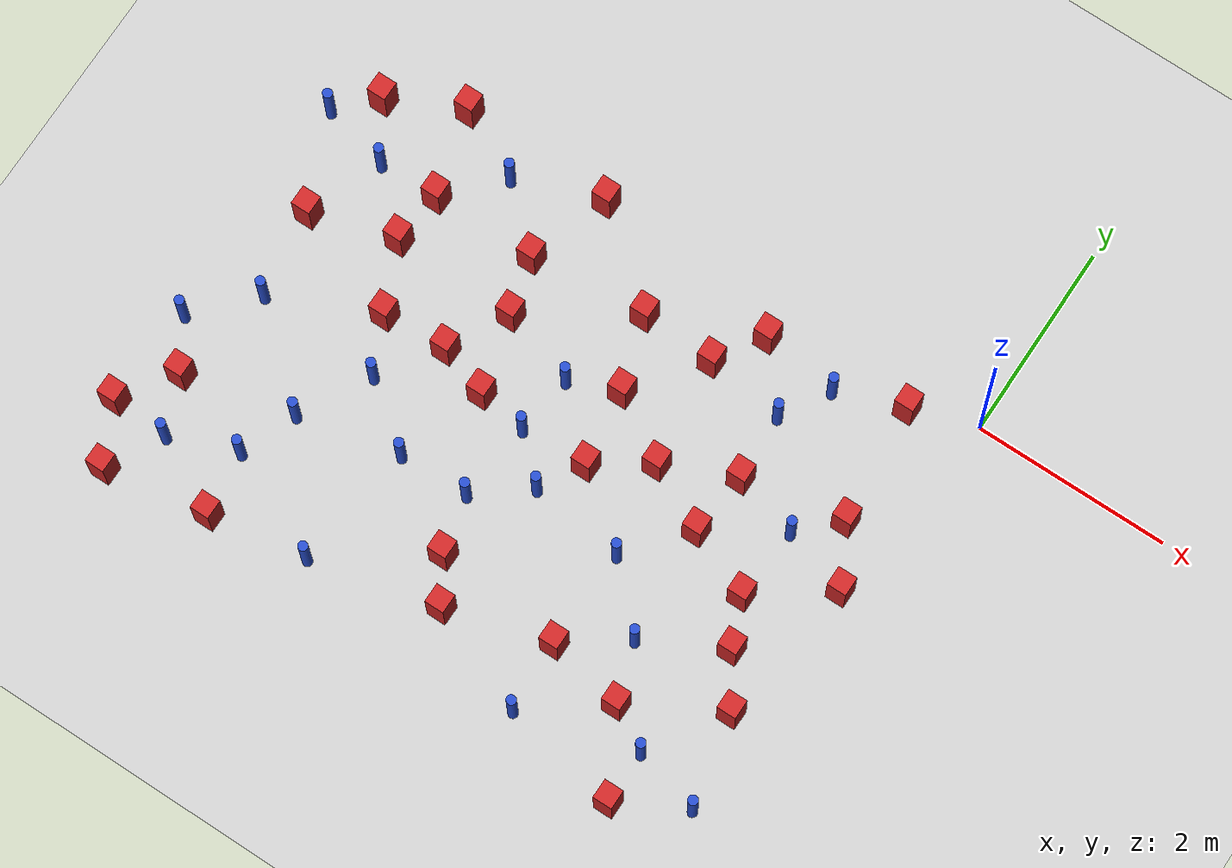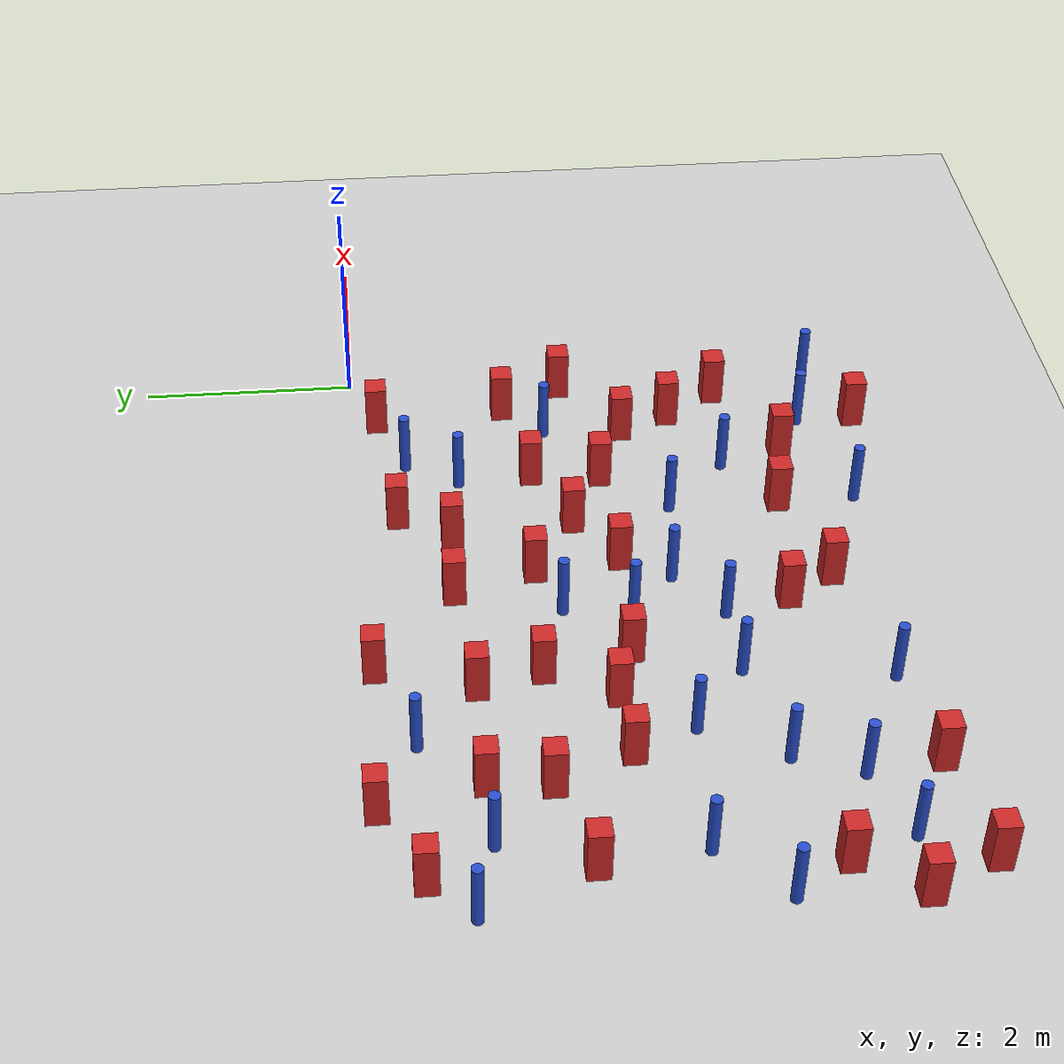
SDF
<sdf version="1.6">
 <world name="default">
  <model name="ground_plane">
   <static>1</static>
   <link name="link">
    <collision name="collision">
     <geometry><plane><normal>0 0 1</normal><size>100 100</size></plane></geometry>
     <surface><friction><ode><mu>100</mu><mu2>50</mu2></ode></friction></surface>
    </collision>
    <visual name="visual">
     <cast_shadows>0</cast_shadows>
     <geometry><plane><normal>0 0 1</normal><size>100 100</size></plane></geometry>
     <material>
      <ambient>1.0 1.0 1.0 1.0</ambient>
      <diffuse>0.8 0.8 0.8 1.0</diffuse>
      <specular>0.01 0.01 0.01 1.000000</specular>
     </material>
    </visual>
   </link>
  </model>
  <model name="square_post_obstacle1">
   <static>true</static>
   <pose>-1.64343410092 -2.30711598032 1.91545236811e-07 -7.35059704564e-06 1.12565212e-07 2.39332434364e-05</pose>
   <link name="link">
    <pose>0 0 0.25 0 -0 0</pose>
    <inertial>
     <mass>100</mass>
     <inertia>
      <ixx>0.166667</ixx>
      <ixy>0</ixy>
      <ixz>0</ixz>
      <iyy>0.166667</iyy>
      <iyz>0</iyz>
      <izz>0.166667</izz>
     </inertia>
    </inertial>
    <collision name="collision"><geometry><box><size>.2 .2 .5</size></box></geometry></collision>
    <visual name="visual">
     <geometry><box><size>.2 .2 .5</size></box></geometry>
     <material>
      <script><name>Gazebo/Red</name><uri>file://media/materials/scripts/gazebo.material</uri></script>
     </material>
    </visual>
   </link>
  </model>
  <model name="square_post_obstacle5">
   <static>true</static>
   <pose>-2.94836752955 -1.5777060494 1.91545236811e-07 -7.35059704564e-06 1.12565212e-07 2.39332434364e-05</pose>
   <link name="link">
    <pose>0 0 0.25 0 -0 0</pose>
    <inertial>
     <mass>100</mass>
     <inertia>
      <ixx>0.166667</ixx>
      <ixy>0</ixy>
      <ixz>0</ixz>
      <iyy>0.166667</iyy>
      <iyz>0</iyz>
      <izz>0.166667</izz>
     </inertia>
    </inertial>
    <collision name="collision"><geometry><box><size>.2 .2 .5</size></box></geometry></collision>
    <visual name="visual">
     <geometry><box><size>.2 .2 .5</size></box></geometry>
     <material>
      <script><name>Gazebo/Red</name><uri>file://media/materials/scripts/gazebo.material</uri></script>
     </material>
    </visual>
   </link>
  </model>
  <model name="pole_obstacle4">
   <static>true</static>
   <pose>-5.57209997911 -4.01686630805 7.38925637345e-09 -8.47170692796e-08 1.24976764791e-08 -1.74513093031e-07</pose>
   <link name="link">
    <pose>0 0 0.3 0 -0 0</pose>
    <inertial>
     <mass>1</mass>
     <inertia><ixx>0.145833</ixx><ixy>0</ixy><ixz>0</ixz><iyy>0.145833</iyy><iyz>0</iyz><izz>0.125</izz></inertia>
    </inertial>
    <collision name="collision">
     <geometry><cylinder><radius>0.05</radius><length>.6</length></cylinder></geometry>
    </collision>
    <visual name="visual">
     <geometry><cylinder><radius>0.05</radius><length>.6</length></cylinder></geometry>
     <material>
      <script><name>Gazebo/Blue</name><uri>file://media/materials/scripts/gazebo.material</uri></script>
     </material>
    </visual>
   </link>
  </model>
  <model name="square_post_obstacle12">
   <static>true</static>
   <pose>-6.83879509519 -4.23046960165 1.91545236811e-07 -7.35059704564e-06 1.12565212e-07 2.39332434364e-05</pose>
   <link name="link">
    <pose>0 0 0.25 0 -0 0</pose>
    <inertial>
     <mass>100</mass>
     <inertia>
      <ixx>0.166667</ixx>
      <ixy>0</ixy>
      <ixz>0</ixz>
      <iyy>0.166667</iyy>
      <iyz>0</iyz>
      <izz>0.166667</izz>
     </inertia>
    </inertial>
    <collision name="collision"><geometry><box><size>.2 .2 .5</size></box></geometry></collision>
    <visual name="visual">
     <geometry><box><size>.2 .2 .5</size></box></geometry>
     <material>
      <script><name>Gazebo/Red</name><uri>file://media/materials/scripts/gazebo.material</uri></script>
     </material>
    </visual>
   </link>
  </model>
  <model name="pole_obstacle9">
   <static>true</static>
   <pose>-6.08255972995 -0.967734815302 7.38925637345e-09 -8.47170692799e-08 1.24976765054e-08 -1.74513093018e-07</pose>
   <link name="link">
    <pose>0 0 0.3 0 -0 0</pose>
    <inertial>
     <mass>1</mass>
     <inertia><ixx>0.145833</ixx><ixy>0</ixy><ixz>0</ixz><iyy>0.145833</iyy><iyz>0</iyz><izz>0.125</izz></inertia>
    </inertial>
    <collision name="collision">
     <geometry><cylinder><radius>0.05</radius><length>.6</length></cylinder></geometry>
    </collision>
    <visual name="visual">
     <geometry><cylinder><radius>0.05</radius><length>.6</length></cylinder></geometry>
     <material>
      <script><name>Gazebo/Blue</name><uri>file://media/materials/scripts/gazebo.material</uri></script>
     </material>
    </visual>
   </link>
  </model>
  <model name="square_post_obstacle22">
   <static>true</static>
   <pose>-4.10464429854 -0.103522538844 1.91545236811e-07 -7.35059704564e-06 1.12565212e-07 2.39332434364e-05</pose>
   <link name="link">
    <pose>0 0 0.25 0 -0 0</pose>
    <inertial>
     <mass>100</mass>
     <inertia>
      <ixx>0.166667</ixx>
      <ixy>0</ixy>
      <ixz>0</ixz>
      <iyy>0.166667</iyy>
      <iyz>0</iyz>
      <izz>0.166667</izz>
     </inertia>
    </inertial>
    <collision name="collision"><geometry><box><size>.2 .2 .5</size></box></geometry></collision>
    <visual name="visual">
     <geometry><box><size>.2 .2 .5</size></box></geometry>
     <material>
      <script><name>Gazebo/Red</name><uri>file://media/materials/scripts/gazebo.material</uri></script>
     </material>
    </visual>
   </link>
  </model>
  <model name="square_post_obstacle25">
   <static>true</static>
   <pose>-2.11228978998 -0.387941742074 1.91545236811e-07 -7.35059704564e-06 1.12565212e-07 2.39332434364e-05</pose>
   <link name="link">
    <pose>0 0 0.25 0 -0 0</pose>
    <inertial>
     <mass>100</mass>
     <inertia>
      <ixx>0.166667</ixx>
      <ixy>0</ixy>
      <ixz>0</ixz>
      <iyy>0.166667</iyy>
      <iyz>0</iyz>
      <izz>0.166667</izz>
     </inertia>
    </inertial>
    <collision name="collision"><geometry><box><size>.2 .2 .5</size></box></geometry></collision>
    <visual name="visual">
     <geometry><box><size>.2 .2 .5</size></box></geometry>
     <material>
      <script><name>Gazebo/Red</name><uri>file://media/materials/scripts/gazebo.material</uri></script>
     </material>
    </visual>
   </link>
  </model>
  <model name="pole_obstacle26">
   <static>true</static>
   <pose>-4.98134884612 -0.418722331884 7.38925637345e-09 -8.47170692798e-08 1.24976765003e-08 -1.7451309302e-07</pose>
   <link name="link">
    <pose>0 0 0.3 0 -0 0</pose>
    <inertial>
     <mass>1</mass>
     <inertia><ixx>0.145833</ixx><ixy>0</ixy><ixz>0</ixz><iyy>0.145833</iyy><iyz>0</iyz><izz>0.125</izz></inertia>
    </inertial>
    <collision name="collision">
     <geometry><cylinder><radius>0.05</radius><length>.6</length></cylinder></geometry>
    </collision>
    <visual name="visual">
     <geometry><cylinder><radius>0.05</radius><length>.6</length></cylinder></geometry>
     <material>
      <script><name>Gazebo/Blue</name><uri>file://media/materials/scripts/gazebo.material</uri></script>
     </material>
    </visual>
   </link>
  </model>
  <model name="square_post_obstacle32">
   <static>true</static>
   <pose>-5.68270100299 -0.0684934742213 1.91545236811e-07 -7.35059704564e-06 1.12565212e-07 2.39332434364e-05</pose>
   <link name="link">
    <pose>0 0 0.25 0 -0 0</pose>
    <inertial>
     <mass>100</mass>
     <inertia>
      <ixx>0.166667</ixx>
      <ixy>0</ixy>
      <ixz>0</ixz>
      <iyy>0.166667</iyy>
      <iyz>0</iyz>
      <izz>0.166667</izz>
     </inertia>
    </inertial>
    <collision name="collision"><geometry><box><size>.2 .2 .5</size></box></geometry></collision>
    <visual name="visual">
     <geometry><box><size>.2 .2 .5</size></box></geometry>
     <material>
      <script><name>Gazebo/Red</name><uri>file://media/materials/scripts/gazebo.material</uri></script>
     </material>
    </visual>
   </link>
  </model>
  <model name="pole_obstacle38">
   <static>true</static>
   <pose>-6.24662356583 -4.27376655272 7.38925637345e-09 -8.47170692796e-08 1.24976764786e-08 -1.74513093032e-07</pose>
   <link name="link">
    <pose>0 0 0.3 0 -0 0</pose>
    <inertial>
     <mass>1</mass>
     <inertia><ixx>0.145833</ixx><ixy>0</ixy><ixz>0</ixz><iyy>0.145833</iyy><iyz>0</iyz><izz>0.125</izz></inertia>
    </inertial>
    <collision name="collision">
     <geometry><cylinder><radius>0.05</radius><length>.6</length></cylinder></geometry>
    </collision>
    <visual name="visual">
     <geometry><cylinder><radius>0.05</radius><length>.6</length></cylinder></geometry>
     <material>
      <script><name>Gazebo/Blue</name><uri>file://media/materials/scripts/gazebo.material</uri></script>
     </material>
    </visual>
   </link>
  </model>
  <model name="pole_obstacle40">
   <static>true</static>
   <pose>-2.12644207171 -2.90971165932 7.38925637345e-09 -8.47170692798e-08 1.24976764939e-08 -1.74513093025e-07</pose>
   <link name="link">
    <pose>0 0 0.3 0 -0 0</pose>
    <inertial>
     <mass>1</mass>
     <inertia><ixx>0.145833</ixx><ixy>0</ixy><ixz>0</ixz><iyy>0.145833</iyy><iyz>0</iyz><izz>0.125</izz></inertia>
    </inertial>
    <collision name="collision">
     <geometry><cylinder><radius>0.05</radius><length>.6</length></cylinder></geometry>
    </collision>
    <visual name="visual">
     <geometry><cylinder><radius>0.05</radius><length>.6</length></cylinder></geometry>
     <material>
      <script><name>Gazebo/Blue</name><uri>file://media/materials/scripts/gazebo.material</uri></script>
     </material>
    </visual>
   </link>
  </model>
  <model name="pole_obstacle45">
   <static>true</static>
   <pose>-1.54442410574 -3.48772031681 7.38925637345e-09 -8.47170692799e-08 1.24976765053e-08 -1.74513093017e-07</pose>
   <link name="link">
    <pose>0 0 0.3 0 -0 0</pose>
    <inertial>
     <mass>1</mass>
     <inertia><ixx>0.145833</ixx><ixy>0</ixy><ixz>0</ixz><iyy>0.145833</iyy><iyz>0</iyz><izz>0.125</izz></inertia>
    </inertial>
    <collision name="collision">
     <geometry><cylinder><radius>0.05</radius><length>.6</length></cylinder></geometry>
    </collision>
    <visual name="visual">
     <geometry><cylinder><radius>0.05</radius><length>.6</length></cylinder></geometry>
     <material>
      <script><name>Gazebo/Blue</name><uri>file://media/materials/scripts/gazebo.material</uri></script>
     </material>
    </visual>
   </link>
  </model>
  <model name="square_post_obstacle42">
   <static>true</static>
   <pose>-4.55187009387 -2.13424766193 1.91545236811e-07 -7.35059704564e-06 1.12565212e-07 2.39332434364e-05</pose>
   <link name="link">
    <pose>0 0 0.25 0 -0 0</pose>
    <inertial>
     <mass>100</mass>
     <inertia>
      <ixx>0.166667</ixx>
      <ixy>0</ixy>
      <ixz>0</ixz>
      <iyy>0.166667</iyy>
      <iyz>0</iyz>
      <izz>0.166667</izz>
     </inertia>
    </inertial>
    <collision name="collision"><geometry><box><size>.2 .2 .5</size></box></geometry></collision>
    <visual name="visual">
     <geometry><box><size>.2 .2 .5</size></box></geometry>
     <material>
      <script><name>Gazebo/Red</name><uri>file://media/materials/scripts/gazebo.material</uri></script>
     </material>
    </visual>
   </link>
  </model>
  <model name="square_post_obstacle43">
   <static>true</static>
   <pose>-4.03150252659 -2.30666054844 1.91545236811e-07 -7.35059704564e-06 1.12565212e-07 2.39332434364e-05</pose>
   <link name="link">
    <pose>0 0 0.25 0 -0 0</pose>
    <inertial>
     <mass>100</mass>
     <inertia>
      <ixx>0.166667</ixx>
      <ixy>0</ixy>
      <ixz>0</ixz>
      <iyy>0.166667</iyy>
      <iyz>0</iyz>
      <izz>0.166667</izz>
     </inertia>
    </inertial>
    <collision name="collision"><geometry><box><size>.2 .2 .5</size></box></geometry></collision>
    <visual name="visual">
     <geometry><box><size>.2 .2 .5</size></box></geometry>
     <material>
      <script><name>Gazebo/Red</name><uri>file://media/materials/scripts/gazebo.material</uri></script>
     </material>
    </visual>
   </link>
  </model>
  <model name="square_post_obstacle55">
   <static>true</static>
   <pose>-4.22952834789 -1.52711245303 1.91545236811e-07 -7.35059704564e-06 1.12565212e-07 2.39332434364e-05</pose>
   <link name="link">
    <pose>0 0 0.25 0 -0 0</pose>
    <inertial>
     <mass>100</mass>
     <inertia>
      <ixx>0.166667</ixx>
      <ixy>0</ixy>
      <ixz>0</ixz>
      <iyy>0.166667</iyy>
      <iyz>0</iyz>
      <izz>0.166667</izz>
     </inertia>
    </inertial>
    <collision name="collision"><geometry><box><size>.2 .2 .5</size></box></geometry></collision>
    <visual name="visual">
     <geometry><box><size>.2 .2 .5</size></box></geometry>
     <material>
      <script><name>Gazebo/Red</name><uri>file://media/materials/scripts/gazebo.material</uri></script>
     </material>
    </visual>
   </link>
  </model>
  <model name="square_post_obstacle56">
   <static>true</static>
   <pose>-2.42086681745 -0.871610311276 1.91545236811e-07 -7.35059704564e-06 1.12565212e-07 2.39332434364e-05</pose>
   <link name="link">
    <pose>0 0 0.25 0 -0 0</pose>
    <inertial>
     <mass>100</mass>
     <inertia>
      <ixx>0.166667</ixx>
      <ixy>0</ixy>
      <ixz>0</ixz>
      <iyy>0.166667</iyy>
      <iyz>0</iyz>
      <izz>0.166667</izz>
     </inertia>
    </inertial>
    <collision name="collision"><geometry><box><size>.2 .2 .5</size></box></geometry></collision>
    <visual name="visual">
     <geometry><box><size>.2 .2 .5</size></box></geometry>
     <material>
      <script><name>Gazebo/Red</name><uri>file://media/materials/scripts/gazebo.material</uri></script>
     </material>
    </visual>
   </link>
  </model>
  <model name="square_post_obstacle57">
   <static>true</static>
   <pose>-2.29592351154 -1.98381963339 1.91545236811e-07 -7.35059704564e-06 1.12565212e-07 2.39332434364e-05</pose>
   <link name="link">
    <pose>0 0 0.25 0 -0 0</pose>
    <inertial>
     <mass>100</mass>
     <inertia>
      <ixx>0.166667</ixx>
      <ixy>0</ixy>
      <ixz>0</ixz>
      <iyy>0.166667</iyy>
      <iyz>0</iyz>
      <izz>0.166667</izz>
     </inertia>
    </inertial>
    <collision name="collision"><geometry><box><size>.2 .2 .5</size></box></geometry></collision>
    <visual name="visual">
     <geometry><box><size>.2 .2 .5</size></box></geometry>
     <material>
      <script><name>Gazebo/Red</name><uri>file://media/materials/scripts/gazebo.material</uri></script>
     </material>
    </visual>
   </link>
  </model>
  <model name="pole_obstacle54">
   <static>true</static>
   <pose>-1.61348595148 -0.982863332915 7.38925637345e-09 -8.47170692798e-08 1.24976765028e-08 -1.74513093019e-07</pose>
   <link name="link">
    <pose>0 0 0.3 0 -0 0</pose>
    <inertial>
     <mass>1</mass>
     <inertia><ixx>0.145833</ixx><ixy>0</ixy><ixz>0</ixz><iyy>0.145833</iyy><iyz>0</iyz><izz>0.125</izz></inertia>
    </inertial>
    <collision name="collision">
     <geometry><cylinder><radius>0.05</radius><length>.6</length></cylinder></geometry>
    </collision>
    <visual name="visual">
     <geometry><cylinder><radius>0.05</radius><length>.6</length></cylinder></geometry>
     <material>
      <script><name>Gazebo/Blue</name><uri>file://media/materials/scripts/gazebo.material</uri></script>
     </material>
    </visual>
   </link>
  </model>
  <model name="square_post_obstacle58">
   <static>true</static>
   <pose>-0.546503109581 -1.47065398608 1.91545236811e-07 -7.35059704564e-06 1.12565212e-07 2.39332434364e-05</pose>
   <link name="link">
    <pose>0 0 0.25 0 -0 0</pose>
    <inertial>
     <mass>100</mass>
     <inertia>
      <ixx>0.166667</ixx>
      <ixy>0</ixy>
      <ixz>0</ixz>
      <iyy>0.166667</iyy>
      <iyz>0</iyz>
      <izz>0.166667</izz>
     </inertia>
    </inertial>
    <collision name="collision"><geometry><box><size>.2 .2 .5</size></box></geometry></collision>
    <visual name="visual">
     <geometry><box><size>.2 .2 .5</size></box></geometry>
     <material>
      <script><name>Gazebo/Red</name><uri>file://media/materials/scripts/gazebo.material</uri></script>
     </material>
    </visual>
   </link>
  </model>
  <model name="square_post_obstacle59">
   <static>true</static>
   <pose>-0.654382673865 -0.247175848637 1.91545236811e-07 -7.35059704564e-06 1.12565212e-07 2.39332434364e-05</pose>
   <link name="link">
    <pose>0 0 0.25 0 -0 0</pose>
    <inertial>
     <mass>100</mass>
     <inertia>
      <ixx>0.166667</ixx>
      <ixy>0</ixy>
      <ixz>0</ixz>
      <iyy>0.166667</iyy>
      <iyz>0</iyz>
      <izz>0.166667</izz>
     </inertia>
    </inertial>
    <collision name="collision"><geometry><box><size>.2 .2 .5</size></box></geometry></collision>
    <visual name="visual">
     <geometry><box><size>.2 .2 .5</size></box></geometry>
     <material>
      <script><name>Gazebo/Red</name><uri>file://media/materials/scripts/gazebo.material</uri></script>
     </material>
    </visual>
   </link>
  </model>
  <model name="square_post_obstacle60">
   <static>true</static>
   <pose>-0.915839271094 -4.86990770244 1.91545236811e-07 -7.35059704564e-06 1.12565212e-07 2.39332434364e-05</pose>
   <link name="link">
    <pose>0 0 0.25 0 -0 0</pose>
    <inertial>
     <mass>100</mass>
     <inertia>
      <ixx>0.166667</ixx>
      <ixy>0</ixy>
      <ixz>0</ixz>
      <iyy>0.166667</iyy>
      <iyz>0</iyz>
      <izz>0.166667</izz>
     </inertia>
    </inertial>
    <collision name="collision"><geometry><box><size>.2 .2 .5</size></box></geometry></collision>
    <visual name="visual">
     <geometry><box><size>.2 .2 .5</size></box></geometry>
     <material>
      <script><name>Gazebo/Red</name><uri>file://media/materials/scripts/gazebo.material</uri></script>
     </material>
    </visual>
   </link>
  </model>
  <model name="pole_obstacle59">
   <static>true</static>
   <pose>-4.49266097033 -4.51025792155 7.38925637345e-09 -8.47170692796e-08 1.24976764786e-08 -1.74513093032e-07</pose>
   <link name="link">
    <pose>0 0 0.3 0 -0 0</pose>
    <inertial>
     <mass>1</mass>
     <inertia><ixx>0.145833</ixx><ixy>0</ixy><ixz>0</ixz><iyy>0.145833</iyy><iyz>0</iyz><izz>0.125</izz></inertia>
    </inertial>
    <collision name="collision">
     <geometry><cylinder><radius>0.05</radius><length>.6</length></cylinder></geometry>
    </collision>
    <visual name="visual">
     <geometry><cylinder><radius>0.05</radius><length>.6</length></cylinder></geometry>
     <material>
      <script><name>Gazebo/Blue</name><uri>file://media/materials/scripts/gazebo.material</uri></script>
     </material>
    </visual>
   </link>
  </model>
  <model name="square_post_obstacle62">
   <static>true</static>
   <pose>-2.14258319495 -3.91710662383 1.91545236811e-07 -7.35059704564e-06 1.12565212e-07 2.39332434364e-05</pose>
   <link name="link">
    <pose>0 0 0.25 0 -0 0</pose>
    <inertial>
     <mass>100</mass>
     <inertia>
      <ixx>0.166667</ixx>
      <ixy>0</ixy>
      <ixz>0</ixz>
      <iyy>0.166667</iyy>
      <iyz>0</iyz>
      <izz>0.166667</izz>
     </inertia>
    </inertial>
    <collision name="collision"><geometry><box><size>.2 .2 .5</size></box></geometry></collision>
    <visual name="visual">
     <geometry><box><size>.2 .2 .5</size></box></geometry>
     <material>
      <script><name>Gazebo/Red</name><uri>file://media/materials/scripts/gazebo.material</uri></script>
     </material>
    </visual>
   </link>
  </model>
  <model name="square_post_obstacle68">
   <static>true</static>
   <pose>-0.758814473766 -3.06621147289 1.91545236811e-07 -7.35059704564e-06 1.12565212e-07 2.39332434364e-05</pose>
   <link name="link">
    <pose>0 0 0.25 0 -0 0</pose>
    <inertial>
     <mass>100</mass>
     <inertia>
      <ixx>0.166667</ixx>
      <ixy>0</ixy>
      <ixz>0</ixz>
      <iyy>0.166667</iyy>
      <iyz>0</iyz>
      <izz>0.166667</izz>
     </inertia>
    </inertial>
    <collision name="collision"><geometry><box><size>.2 .2 .5</size></box></geometry></collision>
    <visual name="visual">
     <geometry><box><size>.2 .2 .5</size></box></geometry>
     <material>
      <script><name>Gazebo/Red</name><uri>file://media/materials/scripts/gazebo.material</uri></script>
     </material>
    </visual>
   </link>
  </model>
  <model name="square_post_obstacle70">
   <static>true</static>
   <pose>-3.19444196023 -4.20843947092 1.91545236811e-07 -7.35059704564e-06 1.12565212e-07 2.39332434364e-05</pose>
   <link name="link">
    <pose>0 0 0.25 0 -0 0</pose>
    <inertial>
     <mass>100</mass>
     <inertia>
      <ixx>0.166667</ixx>
      <ixy>0</ixy>
      <ixz>0</ixz>
      <iyy>0.166667</iyy>
      <iyz>0</iyz>
      <izz>0.166667</izz>
     </inertia>
    </inertial>
    <collision name="collision"><geometry><box><size>.2 .2 .5</size></box></geometry></collision>
    <visual name="visual">
     <geometry><box><size>.2 .2 .5</size></box></geometry>
     <material>
      <script><name>Gazebo/Red</name><uri>file://media/materials/scripts/gazebo.material</uri></script>
     </material>
    </visual>
   </link>
  </model>
  <model name="pole_obstacle67">
   <static>true</static>
   <pose>-0.237826056629 -4.51177749484 7.38925637345e-09 -8.47170692799e-08 1.2497676507e-08 -1.74513093018e-07</pose>
   <link name="link">
    <pose>0 0 0.3 0 -0 0</pose>
    <inertial>
     <mass>1</mass>
     <inertia><ixx>0.145833</ixx><ixy>0</ixy><ixz>0</ixz><iyy>0.145833</iyy><iyz>0</iyz><izz>0.125</izz></inertia>
    </inertial>
    <collision name="collision">
     <geometry><cylinder><radius>0.05</radius><length>.6</length></cylinder></geometry>
    </collision>
    <visual name="visual">
     <geometry><cylinder><radius>0.05</radius><length>.6</length></cylinder></geometry>
     <material>
      <script><name>Gazebo/Blue</name><uri>file://media/materials/scripts/gazebo.material</uri></script>
     </material>
    </visual>
   </link>
  </model>
  <model name="pole_obstacle71">
   <static>true</static>
   <pose>-4.963160413 -2.73008629406 7.38925637345e-09 -8.47170692798e-08 1.24976764937e-08 -1.74513093023e-07</pose>
   <link name="link">
    <pose>0 0 0.3 0 -0 0</pose>
    <inertial>
     <mass>1</mass>
     <inertia><ixx>0.145833</ixx><ixy>0</ixy><ixz>0</ixz><iyy>0.145833</iyy><iyz>0</iyz><izz>0.125</izz></inertia>
    </inertial>
    <collision name="collision">
     <geometry><cylinder><radius>0.05</radius><length>.6</length></cylinder></geometry>
    </collision>
    <visual name="visual">
     <geometry><cylinder><radius>0.05</radius><length>.6</length></cylinder></geometry>
     <material>
      <script><name>Gazebo/Blue</name><uri>file://media/materials/scripts/gazebo.material</uri></script>
     </material>
    </visual>
   </link>
  </model>
  <model name="pole_obstacle75">
   <static>true</static>
   <pose>-3.0911874587 -2.79194348551 7.38925637345e-09 -8.47170692798e-08 1.24976764939e-08 -1.74513093025e-07</pose>
   <link name="link">
    <pose>0 0 0.3 0 -0 0</pose>
    <inertial>
     <mass>1</mass>
     <inertia><ixx>0.145833</ixx><ixy>0</ixy><ixz>0</ixz><iyy>0.145833</iyy><iyz>0</iyz><izz>0.125</izz></inertia>
    </inertial>
    <collision name="collision">
     <geometry><cylinder><radius>0.05</radius><length>.6</length></cylinder></geometry>
    </collision>
    <visual name="visual">
     <geometry><cylinder><radius>0.05</radius><length>.6</length></cylinder></geometry>
     <material>
      <script><name>Gazebo/Blue</name><uri>file://media/materials/scripts/gazebo.material</uri></script>
     </material>
    </visual>
   </link>
  </model>
  <model name="pole_obstacle80">
   <static>true</static>
   <pose>-3.44625279096 -1.77856532107 7.38925637345e-09 -8.47170692796e-08 1.24976764713e-08 -1.74513093037e-07</pose>
   <link name="link">
    <pose>0 0 0.3 0 -0 0</pose>
    <inertial>
     <mass>1</mass>
     <inertia><ixx>0.145833</ixx><ixy>0</ixy><ixz>0</ixz><iyy>0.145833</iyy><iyz>0</iyz><izz>0.125</izz></inertia>
    </inertial>
    <collision name="collision">
     <geometry><cylinder><radius>0.05</radius><length>.6</length></cylinder></geometry>
    </collision>
    <visual name="visual">
     <geometry><cylinder><radius>0.05</radius><length>.6</length></cylinder></geometry>
     <material>
      <script><name>Gazebo/Blue</name><uri>file://media/materials/scripts/gazebo.material</uri></script>
     </material>
    </visual>
   </link>
  </model>
  <model name="pole_obstacle81">
   <static>true</static>
   <pose>-1.32649329822 -0.495408055077 7.38925637345e-09 -8.47170692799e-08 1.24976765044e-08 -1.74513093018e-07</pose>
   <link name="link">
    <pose>0 0 0.3 0 -0 0</pose>
    <inertial>
     <mass>1</mass>
     <inertia><ixx>0.145833</ixx><ixy>0</ixy><ixz>0</ixz><iyy>0.145833</iyy><iyz>0</iyz><izz>0.125</izz></inertia>
    </inertial>
    <collision name="collision">
     <geometry><cylinder><radius>0.05</radius><length>.6</length></cylinder></geometry>
    </collision>
    <visual name="visual">
     <geometry><cylinder><radius>0.05</radius><length>.6</length></cylinder></geometry>
     <material>
      <script><name>Gazebo/Blue</name><uri>file://media/materials/scripts/gazebo.material</uri></script>
     </material>
    </visual>
   </link>
  </model>
  <model name="pole_obstacle91">
   <static>true</static>
   <pose>-0.918378129979 -4.33464727859 7.38925637345e-09 -8.471706928e-08 1.24976765086e-08 -1.74513093015e-07</pose>
   <link name="link">
    <pose>0 0 0.3 0 -0 0</pose>
    <inertial>
     <mass>1</mass>
     <inertia><ixx>0.145833</ixx><ixy>0</ixy><ixz>0</ixz><iyy>0.145833</iyy><iyz>0</iyz><izz>0.125</izz></inertia>
    </inertial>
    <collision name="collision">
     <geometry><cylinder><radius>0.05</radius><length>.6</length></cylinder></geometry>
    </collision>
    <visual name="visual">
     <geometry><cylinder><radius>0.05</radius><length>.6</length></cylinder></geometry>
     <material>
      <script><name>Gazebo/Blue</name><uri>file://media/materials/scripts/gazebo.material</uri></script>
     </material>
    </visual>
   </link>
  </model>
  <model name="square_post_obstacle85">
   <static>true</static>
   <pose>-1.35530000632 -4.07528991214 1.91545236811e-07 -7.35059704564e-06 1.12565212e-07 2.39332434364e-05</pose>
   <link name="link">
    <pose>0 0 0.25 0 -0 0</pose>
    <inertial>
     <mass>100</mass>
     <inertia>
      <ixx>0.166667</ixx>
      <ixy>0</ixy>
      <ixz>0</ixz>
      <iyy>0.166667</iyy>
      <iyz>0</iyz>
      <izz>0.166667</izz>
     </inertia>
    </inertial>
    <collision name="collision"><geometry><box><size>.2 .2 .5</size></box></geometry></collision>
    <visual name="visual">
     <geometry><box><size>.2 .2 .5</size></box></geometry>
     <material>
      <script><name>Gazebo/Red</name><uri>file://media/materials/scripts/gazebo.material</uri></script>
     </material>
    </visual>
   </link>
  </model>
  <model name="square_post_obstacle112">
   <static>true</static>
   <pose>-3.18716690373 -0.840455420941 1.91545236811e-07 -7.35059704564e-06 1.12565212e-07 2.39332434364e-05</pose>
   <link name="link">
    <pose>0 0 0.25 0 -0 0</pose>
    <inertial>
     <mass>100</mass>
     <inertia>
      <ixx>0.166667</ixx>
      <ixy>0</ixy>
      <ixz>0</ixz>
      <iyy>0.166667</iyy>
      <iyz>0</iyz>
      <izz>0.166667</izz>
     </inertia>
    </inertial>
    <collision name="collision"><geometry><box><size>.2 .2 .5</size></box></geometry></collision>
    <visual name="visual">
     <geometry><box><size>.2 .2 .5</size></box></geometry>
     <material>
      <script><name>Gazebo/Red</name><uri>file://media/materials/scripts/gazebo.material</uri></script>
     </material>
    </visual>
   </link>
  </model>
  <model name="square_post_obstacle116">
   <static>true</static>
   <pose>-6.3805257658 -1.73973527856 1.91545236811e-07 -7.35059704564e-06 1.12565212e-07 2.39332434364e-05</pose>
   <link name="link">
    <pose>0 0 0.25 0 -0 0</pose>
    <inertial>
     <mass>100</mass>
     <inertia>
      <ixx>0.166667</ixx>
      <ixy>0</ixy>
      <ixz>0</ixz>
      <iyy>0.166667</iyy>
      <iyz>0</iyz>
      <izz>0.166667</izz>
     </inertia>
    </inertial>
    <collision name="collision"><geometry><box><size>.2 .2 .5</size></box></geometry></collision>
    <visual name="visual">
     <geometry><box><size>.2 .2 .5</size></box></geometry>
     <material>
      <script><name>Gazebo/Red</name><uri>file://media/materials/scripts/gazebo.material</uri></script>
     </material>
    </visual>
   </link>
  </model>
  <model name="pole_obstacle136">
   <static>true</static>
   <pose>-6.78582721013 -0.786805553828 7.38925637345e-09 -8.47170692799e-08 1.24976765038e-08 -1.74513093018e-07</pose>
   <link name="link">
    <pose>0 0 0.3 0 -0 0</pose>
    <inertial>
     <mass>1</mass>
     <inertia><ixx>0.145833</ixx><ixy>0</ixy><ixz>0</ixz><iyy>0.145833</iyy><iyz>0</iyz><izz>0.125</izz></inertia>
    </inertial>
    <collision name="collision">
     <geometry><cylinder><radius>0.05</radius><length>.6</length></cylinder></geometry>
    </collision>
    <visual name="visual">
     <geometry><cylinder><radius>0.05</radius><length>.6</length></cylinder></geometry>
     <material>
      <script><name>Gazebo/Blue</name><uri>file://media/materials/scripts/gazebo.material</uri></script>
     </material>
    </visual>
   </link>
  </model>
  <model name="square_post_obstacle120">
   <static>true</static>
   <pose>-1.57708687951 -1.66377284536 1.91545236811e-07 -7.35059704564e-06 1.12565212e-07 2.39332434364e-05</pose>
   <link name="link">
    <pose>0 0 0.25 0 -0 0</pose>
    <inertial>
     <mass>100</mass>
     <inertia>
      <ixx>0.166667</ixx>
      <ixy>0</ixy>
      <ixz>0</ixz>
      <iyy>0.166667</iyy>
      <iyz>0</iyz>
      <izz>0.166667</izz>
     </inertia>
    </inertial>
    <collision name="collision"><geometry><box><size>.2 .2 .5</size></box></geometry></collision>
    <visual name="visual">
     <geometry><box><size>.2 .2 .5</size></box></geometry>
     <material>
      <script><name>Gazebo/Red</name><uri>file://media/materials/scripts/gazebo.material</uri></script>
     </material>
    </visual>
   </link>
  </model>
  <model name="square_post_obstacle123">
   <static>true</static>
   <pose>-5.48599838082 -4.6613567158 1.91545236811e-07 -7.35059704564e-06 1.12565212e-07 2.39332434364e-05</pose>
   <link name="link">
    <pose>0 0 0.25 0 -0 0</pose>
    <inertial>
     <mass>100</mass>
     <inertia>
      <ixx>0.166667</ixx>
      <ixy>0</ixy>
      <ixz>0</ixz>
      <iyy>0.166667</iyy>
      <iyz>0</iyz>
      <izz>0.166667</izz>
     </inertia>
    </inertial>
    <collision name="collision"><geometry><box><size>.2 .2 .5</size></box></geometry></collision>
    <visual name="visual">
     <geometry><box><size>.2 .2 .5</size></box></geometry>
     <material>
      <script><name>Gazebo/Red</name><uri>file://media/materials/scripts/gazebo.material</uri></script>
     </material>
    </visual>
   </link>
  </model>
  <model name="square_post_obstacle132">
   <static>true</static>
   <pose>-2.83939870883 -2.34881716546 1.91545236811e-07 -7.35059704564e-06 1.12565212e-07 2.39332434364e-05</pose>
   <link name="link">
    <pose>0 0 0.25 0 -0 0</pose>
    <inertial>
     <mass>100</mass>
     <inertia>
      <ixx>0.166667</ixx>
      <ixy>0</ixy>
      <ixz>0</ixz>
      <iyy>0.166667</iyy>
      <iyz>0</iyz>
      <izz>0.166667</izz>
     </inertia>
    </inertial>
    <collision name="collision"><geometry><box><size>.2 .2 .5</size></box></geometry></collision>
    <visual name="visual">
     <geometry><box><size>.2 .2 .5</size></box></geometry>
     <material>
      <script><name>Gazebo/Red</name><uri>file://media/materials/scripts/gazebo.material</uri></script>
     </material>
    </visual>
   </link>
  </model>
  <model name="pole_obstacle144">
   <static>true</static>
   <pose>-0.906635102961 -1.849996162 7.38925637345e-09 -8.47170692799e-08 1.24976765033e-08 -1.7451309302e-07</pose>
   <link name="link">
    <pose>0 0 0.3 0 -0 0</pose>
    <inertial>
     <mass>1</mass>
     <inertia><ixx>0.145833</ixx><ixy>0</ixy><ixz>0</ixz><iyy>0.145833</iyy><iyz>0</iyz><izz>0.125</izz></inertia>
    </inertial>
    <collision name="collision">
     <geometry><cylinder><radius>0.05</radius><length>.6</length></cylinder></geometry>
    </collision>
    <visual name="visual">
     <geometry><cylinder><radius>0.05</radius><length>.6</length></cylinder></geometry>
     <material>
      <script><name>Gazebo/Blue</name><uri>file://media/materials/scripts/gazebo.material</uri></script>
     </material>
    </visual>
   </link>
  </model>
  <model name="square_post_obstacle135">
   <static>true</static>
   <pose>-5.2143056561 -2.1731994282 1.91545236811e-07 -7.35059704564e-06 1.12565212e-07 2.39332434364e-05</pose>
   <link name="link">
    <pose>0 0 0.25 0 -0 0</pose>
    <inertial>
     <mass>100</mass>
     <inertia>
      <ixx>0.166667</ixx>
      <ixy>0</ixy>
      <ixz>0</ixz>
      <iyy>0.166667</iyy>
      <iyz>0</iyz>
      <izz>0.166667</izz>
     </inertia>
    </inertial>
    <collision name="collision"><geometry><box><size>.2 .2 .5</size></box></geometry></collision>
    <visual name="visual">
     <geometry><box><size>.2 .2 .5</size></box></geometry>
     <material>
      <script><name>Gazebo/Red</name><uri>file://media/materials/scripts/gazebo.material</uri></script>
     </material>
    </visual>
   </link>
  </model>
  <model name="pole_obstacle150">
   <static>true</static>
   <pose>-5.35133343874 -3.43959096463 7.38925637345e-09 -8.47170692798e-08 1.24976764937e-08 -1.74513093023e-07</pose>
   <link name="link">
    <pose>0 0 0.3 0 -0 0</pose>
    <inertial>
     <mass>1</mass>
     <inertia><ixx>0.145833</ixx><ixy>0</ixy><ixz>0</ixz><iyy>0.145833</iyy><iyz>0</iyz><izz>0.125</izz></inertia>
    </inertial>
    <collision name="collision">
     <geometry><cylinder><radius>0.05</radius><length>.6</length></cylinder></geometry>
    </collision>
    <visual name="visual">
     <geometry><cylinder><radius>0.05</radius><length>.6</length></cylinder></geometry>
     <material>
      <script><name>Gazebo/Blue</name><uri>file://media/materials/scripts/gazebo.material</uri></script>
     </material>
    </visual>
   </link>
  </model>
  <model name="square_post_obstacle141">
   <static>true</static>
   <pose>-5.51604489508 -1.49415057436 1.91545236811e-07 -7.35059704564e-06 1.12565212e-07 2.39332434364e-05</pose>
   <link name="link">
    <pose>0 0 0.25 0 -0 0</pose>
    <inertial>
     <mass>100</mass>
     <inertia>
      <ixx>0.166667</ixx>
      <ixy>0</ixy>
      <ixz>0</ixz>
      <iyy>0.166667</iyy>
      <iyz>0</iyz>
      <izz>0.166667</izz>
     </inertia>
    </inertial>
    <collision name="collision"><geometry><box><size>.2 .2 .5</size></box></geometry></collision>
    <visual name="visual">
     <geometry><box><size>.2 .2 .5</size></box></geometry>
     <material>
      <script><name>Gazebo/Red</name><uri>file://media/materials/scripts/gazebo.material</uri></script>
     </material>
    </visual>
   </link>
  </model>
  <model name="pole_obstacle152">
   <static>true</static>
   <pose>-6.26146299945 -2.64551091946 7.38925637345e-09 -8.47170692798e-08 1.24976764937e-08 -1.74513093023e-07</pose>
   <link name="link">
    <pose>0 0 0.3 0 -0 0</pose>
    <inertial>
     <mass>1</mass>
     <inertia><ixx>0.145833</ixx><ixy>0</ixy><ixz>0</ixz><iyy>0.145833</iyy><iyz>0</iyz><izz>0.125</izz></inertia>
    </inertial>
    <collision name="collision">
     <geometry><cylinder><radius>0.05</radius><length>.6</length></cylinder></geometry>
    </collision>
    <visual name="visual">
     <geometry><cylinder><radius>0.05</radius><length>.6</length></cylinder></geometry>
     <material>
      <script><name>Gazebo/Blue</name><uri>file://media/materials/scripts/gazebo.material</uri></script>
     </material>
    </visual>
   </link>
  </model>
  <model name="pole_obstacle169">
   <static>true</static>
   <pose>-3.60220724065 -3.19968331425 7.38925637345e-09 -8.47170692798e-08 1.24976764939e-08 -1.74513093025e-07</pose>
   <link name="link">
    <pose>0 0 0.3 0 -0 0</pose>
    <inertial>
     <mass>1</mass>
     <inertia><ixx>0.145833</ixx><ixy>0</ixy><ixz>0</ixz><iyy>0.145833</iyy><iyz>0</iyz><izz>0.125</izz></inertia>
    </inertial>
    <collision name="collision">
     <geometry><cylinder><radius>0.05</radius><length>.6</length></cylinder></geometry>
    </collision>
    <visual name="visual">
     <geometry><cylinder><radius>0.05</radius><length>.6</length></cylinder></geometry>
     <material>
      <script><name>Gazebo/Blue</name><uri>file://media/materials/scripts/gazebo.material</uri></script>
     </material>
    </visual>
   </link>
  </model>
  <model name="square_post_obstacle161">
   <static>true</static>
   <pose>-4.38110678978 -0.953895193665 1.91545236811e-07 -7.35059704564e-06 1.12565212e-07 2.39332434364e-05</pose>
   <link name="link">
    <pose>0 0 0.25 0 -0 0</pose>
    <inertial>
     <mass>100</mass>
     <inertia>
      <ixx>0.166667</ixx>
      <ixy>0</ixy>
      <ixz>0</ixz>
      <iyy>0.166667</iyy>
      <iyz>0</iyz>
      <izz>0.166667</izz>
     </inertia>
    </inertial>
    <collision name="collision"><geometry><box><size>.2 .2 .5</size></box></geometry></collision>
    <visual name="visual">
     <geometry><box><size>.2 .2 .5</size></box></geometry>
     <material>
      <script><name>Gazebo/Red</name><uri>file://media/materials/scripts/gazebo.material</uri></script>
     </material>
    </visual>
   </link>
  </model>
  <model name="pole_obstacle175">
   <static>true</static>
   <pose>-6.78062775274 -3.2114565358 7.38925637345e-09 -8.47170692798e-08 1.24976764937e-08 -1.74513093023e-07</pose>
   <link name="link">
    <pose>0 0 0.3 0 -0 0</pose>
    <inertial>
     <mass>1</mass>
     <inertia><ixx>0.145833</ixx><ixy>0</ixy><ixz>0</ixz><iyy>0.145833</iyy><iyz>0</iyz><izz>0.125</izz></inertia>
    </inertial>
    <collision name="collision">
     <geometry><cylinder><radius>0.05</radius><length>.6</length></cylinder></geometry>
    </collision>
    <visual name="visual">
     <geometry><cylinder><radius>0.05</radius><length>.6</length></cylinder></geometry>
     <material>
      <script><name>Gazebo/Blue</name><uri>file://media/materials/scripts/gazebo.material</uri></script>
     </material>
    </visual>
   </link>
  </model>
  <model name="pole_obstacle180">
   <static>true</static>
   <pose>-4.31682125059 -3.21925501805 7.38925637345e-09 -8.47170692798e-08 1.24976764937e-08 -1.74513093023e-07</pose>
   <link name="link">
    <pose>0 0 0.3 0 -0 0</pose>
    <inertial>
     <mass>1</mass>
     <inertia><ixx>0.145833</ixx><ixy>0</ixy><ixz>0</ixz><iyy>0.145833</iyy><iyz>0</iyz><izz>0.125</izz></inertia>
    </inertial>
    <collision name="collision">
     <geometry><cylinder><radius>0.05</radius><length>.6</length></cylinder></geometry>
    </collision>
    <visual name="visual">
     <geometry><cylinder><radius>0.05</radius><length>.6</length></cylinder></geometry>
     <material>
      <script><name>Gazebo/Blue</name><uri>file://media/materials/scripts/gazebo.material</uri></script>
     </material>
    </visual>
   </link>
  </model>
  <model name="square_post_obstacle174">
   <static>true</static>
   <pose>-3.4645127947 -3.77703253977 1.91545236811e-07 -7.35059704564e-06 1.12565212e-07 2.39332434364e-05</pose>
   <link name="link">
    <pose>0 0 0.25 0 -0 0</pose>
    <inertial>
     <mass>100</mass>
     <inertia>
      <ixx>0.166667</ixx>
      <ixy>0</ixy>
      <ixz>0</ixz>
      <iyy>0.166667</iyy>
      <iyz>0</iyz>
      <izz>0.166667</izz>
     </inertia>
    </inertial>
    <collision name="collision"><geometry><box><size>.2 .2 .5</size></box></geometry></collision>
    <visual name="visual">
     <geometry><box><size>.2 .2 .5</size></box></geometry>
     <material>
      <script><name>Gazebo/Red</name><uri>file://media/materials/scripts/gazebo.material</uri></script>
     </material>
    </visual>
   </link>
  </model>
  <model name="square_post_obstacle183">
   <static>true</static>
   <pose>-5.4587748667 -0.950536431432 1.91545236811e-07 -7.35059704564e-06 1.12565212e-07 2.39332434364e-05</pose>
   <link name="link">
    <pose>0 0 0.25 0 -0 0</pose>
    <inertial>
     <mass>100</mass>
     <inertia>
      <ixx>0.166667</ixx>
      <ixy>0</ixy>
      <ixz>0</ixz>
      <iyy>0.166667</iyy>
      <iyz>0</iyz>
      <izz>0.166667</izz>
     </inertia>
    </inertial>
    <collision name="collision"><geometry><box><size>.2 .2 .5</size></box></geometry></collision>
    <visual name="visual">
     <geometry><box><size>.2 .2 .5</size></box></geometry>
     <material>
      <script><name>Gazebo/Red</name><uri>file://media/materials/scripts/gazebo.material</uri></script>
     </material>
    </visual>
   </link>
  </model>
  <model name="square_post_obstacle187">
   <static>true</static>
   <pose>-0.962146282744 -2.58966163376 1.91545236811e-07 -7.35059704564e-06 1.12565212e-07 2.39332434364e-05</pose>
   <link name="link">
    <pose>0 0 0.25 0 -0 0</pose>
    <inertial>
     <mass>100</mass>
     <inertia>
      <ixx>0.166667</ixx>
      <ixy>0</ixy>
      <ixz>0</ixz>
      <iyy>0.166667</iyy>
      <iyz>0</iyz>
      <izz>0.166667</izz>
     </inertia>
    </inertial>
    <collision name="collision"><geometry><box><size>.2 .2 .5</size></box></geometry></collision>
    <visual name="visual">
     <geometry><box><size>.2 .2 .5</size></box></geometry>
     <material>
      <script><name>Gazebo/Red</name><uri>file://media/materials/scripts/gazebo.material</uri></script>
     </material>
    </visual>
   </link>
  </model>
  <model name="square_post_obstacle206">
   <static>true</static>
   <pose>-0.438459501287 -3.56249202287 1.91545236811e-07 -7.35059704564e-06 1.12565212e-07 2.39332434364e-05</pose>
   <link name="link">
    <pose>0 0 0.25 0 -0 0</pose>
    <inertial>
     <mass>100</mass>
     <inertia>
      <ixx>0.166667</ixx>
      <ixy>0</ixy>
      <ixz>0</ixz>
      <iyy>0.166667</iyy>
      <iyz>0</iyz>
      <izz>0.166667</izz>
     </inertia>
    </inertial>
    <collision name="collision"><geometry><box><size>.2 .2 .5</size></box></geometry></collision>
    <visual name="visual">
     <geometry><box><size>.2 .2 .5</size></box></geometry>
     <material>
      <script><name>Gazebo/Red</name><uri>file://media/materials/scripts/gazebo.material</uri></script>
     </material>
    </visual>
   </link>
  </model>
  <model name="square_post_obstacle207">
   <static>true</static>
   <pose>-6.42708048169 -0.421709729179 1.91545236811e-07 -7.35059704564e-06 1.12565212e-07 2.39332434364e-05</pose>
   <link name="link">
    <pose>0 0 0.25 0 -0 0</pose>
    <inertial>
     <mass>100</mass>
     <inertia>
      <ixx>0.166667</ixx>
      <ixy>0</ixy>
      <ixz>0</ixz>
      <iyy>0.166667</iyy>
      <iyz>0</iyz>
      <izz>0.166667</izz>
     </inertia>
    </inertial>
    <collision name="collision"><geometry><box><size>.2 .2 .5</size></box></geometry></collision>
    <visual name="visual">
     <geometry><box><size>.2 .2 .5</size></box></geometry>
     <material>
      <script><name>Gazebo/Red</name><uri>file://media/materials/scripts/gazebo.material</uri></script>
     </material>
    </visual>
   </link>
  </model>
  <model name="pole_obstacle198">
   <static>true</static>
   <pose>-3.5204514784 -2.39207869946 7.38925637345e-09 -8.47170692798e-08 1.24976764939e-08 -1.74513093025e-07</pose>
   <link name="link">
    <pose>0 0 0.3 0 -0 0</pose>
    <inertial>
     <mass>1</mass>
     <inertia><ixx>0.145833</ixx><ixy>0</ixy><ixz>0</ixz><iyy>0.145833</iyy><iyz>0</iyz><izz>0.125</izz></inertia>
    </inertial>
    <collision name="collision">
     <geometry><cylinder><radius>0.05</radius><length>.6</length></cylinder></geometry>
    </collision>
    <visual name="visual">
     <geometry><cylinder><radius>0.05</radius><length>.6</length></cylinder></geometry>
     <material>
      <script><name>Gazebo/Blue</name><uri>file://media/materials/scripts/gazebo.material</uri></script>
     </material>
    </visual>
   </link>
  </model>
  <model name="pole_obstacle208">
   <static>true</static>
   <pose>-2.11134034109 -4.65024880943 7.38925637345e-09 -8.47170692798e-08 1.24976765033e-08 -1.74513093019e-07</pose>
   <link name="link">
    <pose>0 0 0.3 0 -0 0</pose>
    <inertial>
     <mass>1</mass>
     <inertia><ixx>0.145833</ixx><ixy>0</ixy><ixz>0</ixz><iyy>0.145833</iyy><iyz>0</iyz><izz>0.125</izz></inertia>
    </inertial>
    <collision name="collision">
     <geometry><cylinder><radius>0.05</radius><length>.6</length></cylinder></geometry>
    </collision>
    <visual name="visual">
     <geometry><cylinder><radius>0.05</radius><length>.6</length></cylinder></geometry>
     <material>
      <script><name>Gazebo/Blue</name><uri>file://media/materials/scripts/gazebo.material</uri></script>
     </material>
    </visual>
   </link>
  </model>
  <model name="square_post_obstacle214">
   <static>true</static>
   <pose>-6.46859601703 -3.69249336844 1.91545236811e-07 -7.35059704564e-06 1.12565212e-07 2.39332434364e-05</pose>
   <link name="link">
    <pose>0 0 0.25 0 -0 0</pose>
    <inertial>
     <mass>100</mass>
     <inertia>
      <ixx>0.166667</ixx>
      <ixy>0</ixy>
      <ixz>0</ixz>
      <iyy>0.166667</iyy>
      <iyz>0</iyz>
      <izz>0.166667</izz>
     </inertia>
    </inertial>
    <collision name="collision"><geometry><box><size>.2 .2 .5</size></box></geometry></collision>
    <visual name="visual">
     <geometry><box><size>.2 .2 .5</size></box></geometry>
     <material>
      <script><name>Gazebo/Red</name><uri>file://media/materials/scripts/gazebo.material</uri></script>
     </material>
    </visual>
   </link>
  </model>
  <model name="square_post_obstacle217">
   <static>true</static>
   <pose>-0.22835035412 -2.052639903 1.91545236811e-07 -7.35059704564e-06 1.12565212e-07 2.39332434364e-05</pose>
   <link name="link">
    <pose>0 0 0.25 0 -0 0</pose>
    <inertial>
     <mass>100</mass>
     <inertia>
      <ixx>0.166667</ixx>
      <ixy>0</ixy>
      <ixz>0</ixz>
      <iyy>0.166667</iyy>
      <iyz>0</iyz>
      <izz>0.166667</izz>
     </inertia>
    </inertial>
    <collision name="collision"><geometry><box><size>.2 .2 .5</size></box></geometry></collision>
    <visual name="visual">
     <geometry><box><size>.2 .2 .5</size></box></geometry>
     <material>
      <script><name>Gazebo/Red</name><uri>file://media/materials/scripts/gazebo.material</uri></script>
     </material>
    </visual>
   </link>
  </model>
  <model name="square_post_obstacle221">
   <static>true</static>
   <pose>-6.5435300352 -4.82975001192 1.91545236811e-07 -7.35059704564e-06 1.12565212e-07 2.39332434364e-05</pose>
   <link name="link">
    <pose>0 0 0.25 0 -0 0</pose>
    <inertial>
     <mass>100</mass>
     <inertia>
      <ixx>0.166667</ixx>
      <ixy>0</ixy>
      <ixz>0</ixz>
      <iyy>0.166667</iyy>
      <iyz>0</iyz>
      <izz>0.166667</izz>
     </inertia>
    </inertial>
    <collision name="collision"><geometry><box><size>.2 .2 .5</size></box></geometry></collision>
    <visual name="visual">
     <geometry><box><size>.2 .2 .5</size></box></geometry>
     <material>
      <script><name>Gazebo/Red</name><uri>file://media/materials/scripts/gazebo.material</uri></script>
     </material>
    </visual>
   </link>
  </model>
 </world>
</sdf>
